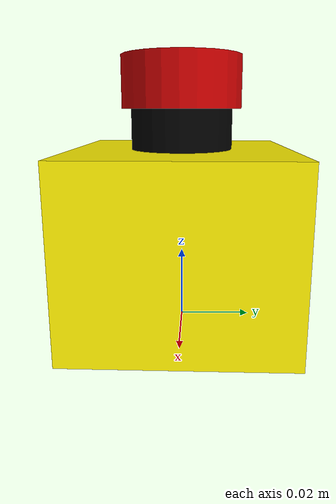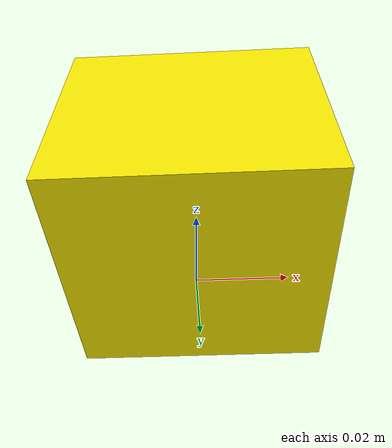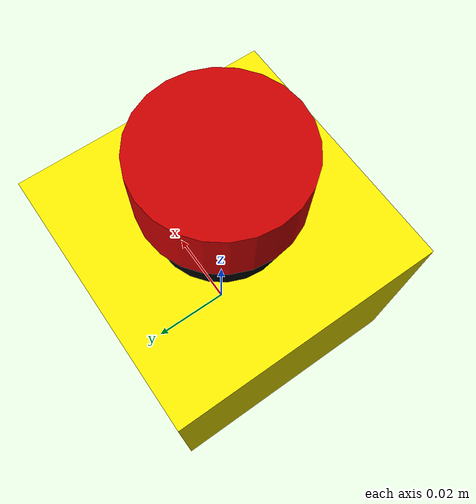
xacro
<?xml version="1.0"?>
<!-- Interactable Emergency Stop Button -->
<robot name="e_stop_button" xmlns:xacro="http://www.ros.org/wiki/xacro">

    <xacro:macro name="e_stop_button">

        <!-- Constants for Button Dimensions -->
        <!-- Base -->
        <xacro:property name="width" value="0.06"/>
        <xacro:property name="height1" value="0.05"/>
        <xacro:property name="mass1" value="0.5"/>

        <!-- Shaft -->
        <xacro:property name="length2" value="0.011"/>
        <xacro:property name="radius2" value="0.014"/>
        <xacro:property name="mass2" value="0.2"/>

        <!-- Top -->
        <xacro:property name="length3" value="0.014"/>
        <xacro:property name="radius3" value="0.0165"/>
        <xacro:property name="mass3" value="0.1"/>

        <!-- Import all Gazebo-customization elements, including Gazebo colors -->
        <xacro:include filename="$(find manipulation_playground_articulated_devices)/devices/e_stop_button/model/button.gazebo" />
        <!-- Import Rviz colors -->
        <xacro:include filename="$(find manipulation_playground_articulated_devices)/devices/e_stop_button/model/materials.xacro" />

        <!-- Used to fix device to world -->
        <link name="world"/>

        <joint name="button_base_to_world" type="fixed">
            <parent link="world"/>
            <child link="base"/>
            <origin xyz="0 0 0" rpy="0 0 0"/>
        </joint>

        <!-- Button Base -->
        <link name="base">
            <collision>
                <origin xyz="0 0 ${height1/2}" rpy="0 0 0"/>
                <geometry>
                    <box size="${width} ${width} ${height1}"/>
                </geometry>
            </collision>

            <visual>
                <origin xyz="0 0 ${height1/2}" rpy="0 0 0"/>
                <geometry>
                    <box size="${width} ${width} ${height1}"/>
                </geometry>
                <material name="yellow"/>
            </visual>

            <inertial>
                <origin xyz="0 0 ${height1/2}" rpy="0 0 0"/>
                <mass value="${mass1}"/>
                <inertia
                    ixx="${mass1 / 12.0 * (width*width + height1*height1)}" ixy="0.0" ixz="0.0"
                    iyy="${mass1 / 12.0 * (height1*height1 + width*width)}" iyz="0.0"
                    izz="${mass1 / 12.0 * (width*width + width*width)}"/>
            </inertial>
        </link>

        <!-- Button Twist Joint -->
        <joint name="button_twist_joint" type="revolute">
            <parent link="base"/>
            <child link="shaft"/>
            <origin xyz="0 0 ${height1}" rpy="0 0 0"/>
            <axis xyz="0 0 1"/>
            <dynamics damping="0.0" friction="0.0" />
            <limit effort="100" lower="-1.5707" upper="0" velocity="0.5" />
        </joint>

        <transmission name="button_twist_trans">
            <type>transmission_interface/SimpleTransmission</type>
            <joint name="button_twist_joint">
                <hardwareInterface>hardware_interface/EffortJointInterface</hardwareInterface>
            </joint>
            <actuator name="button_twist_actuator">
                <hardwareInterface>hardware_interface/EffortJointInterface</hardwareInterface>
                <mechanicalReduction>1</mechanicalReduction>
            </actuator>
        </transmission>

        <!-- Button Shaft -->
        <link name="shaft">
            <collision>
                <origin xyz="0 0 ${length2/2}" rpy="0 0 0"/>
                <geometry>
                    <cylinder radius="${radius2}" length="${length2}"/>
                </geometry>
            </collision>

            <visual>
                <origin xyz="0 0 ${length2/2}" rpy="0 0 0"/>
                <geometry>
                    <cylinder radius="${radius2}" length="${length2}"/>
                </geometry>
                <material name="black"/>
            </visual>

            <inertial>
                <origin xyz="0 0 ${length2/2}" rpy="0 0 0"/>
                <mass value="${mass2}"/>
                <inertia
                    ixx="${mass2 / 12.0 * (3.0*radius2*radius2 + length2*length2)}" ixy="0.0" ixz="0.0"
                    iyy="${mass2 / 12.0 * (3.0*radius2*radius2 + length2*length2)}" iyz="0.0"
                    izz="${mass2 / 2.0 * (radius2*radius2)}"/>
            </inertial>
        </link>

        <joint name="button_handle_to_shaft" type="fixed">
            <parent link="shaft"/>
            <child link="handle_zero"/>
            <origin xyz="0 0 ${length2}" rpy="0 0 0"/>
        </joint>

        <link name="handle_zero">
            <inertial>
                <origin xyz="0 0 0" rpy="0 0 0" />
                <mass value="0.01" />
                <inertia
                ixx="0.01" ixy="0.0" ixz="0.0"
                iyy="0.01" iyz="0.0"
                izz="0.01" />
            </inertial>
        </link>

        <!-- Button (Push) Joint -->
        <joint name="button_joint" type="prismatic">
            <parent link="handle_zero"/>
            <child link="handle"/>
            <origin xyz="0 0 0" rpy="0 0 0"/>
            <axis xyz="0 0 1"/>
            <dynamics damping="0.0" friction="0.0" />
            <limit effort="100" lower="-0.005" upper="0" velocity="0.5" />
        </joint>

        <transmission name="button_trans">
            <type>transmission_interface/SimpleTransmission</type>
            <joint name="button_joint">
                <hardwareInterface>hardware_interface/EffortJointInterface</hardwareInterface>
            </joint>
            <actuator name="button_actuator">
                <hardwareInterface>hardware_interface/EffortJointInterface</hardwareInterface>
                <mechanicalReduction>1</mechanicalReduction>
            </actuator>
        </transmission>

        <!-- Button Handle (Top) -->
        <link name="handle">
            <collision>
                <origin xyz="0 0 ${length3/2}" rpy="0 0 0"/>
                <geometry>
                    <cylinder radius="${radius3}" length="${length3}"/>
                </geometry>
            </collision>

            <visual>
                <origin xyz="0 0 ${length3/2}" rpy="0 0 0"/>
                <geometry>
                    <cylinder radius="${radius3}" length="${length3}"/>
                </geometry>
                <material name="red"/>
            </visual>

            <inertial>
                <origin xyz="0 0 ${length3/2}" rpy="0 0 0"/>
                <mass value="${mass3}"/>
                <inertia
                    ixx="${mass3 / 12.0 * (3.0*radius3*radius3 + length3*length3)}" ixy="0.0" ixz="0.0"
                    iyy="${mass3 / 12.0 * (3.0*radius3*radius3 + length3*length3)}" iyz="0.0"
                    izz="${mass3 / 2.0 * (radius3*radius3)}"/>
            </inertial>
        </link>
    </xacro:macro>

    <xacro:e_stop_button/>
</robot>

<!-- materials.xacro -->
<robot>

  <material name="black">
    <color rgba="0.0 0.0 0.0 1.0"/>
  </material>

  <material name="blue">
    <color rgba="0.0 0.0 0.8 1.0"/>
  </material>

  <material name="green">
    <color rgba="0.0 0.8 0.0 1.0"/>
  </material>

  <material name="grey">
    <color rgba="0.2 0.2 0.2 1.0"/>
  </material>

  <material name="orange">
    <color rgba="${255/255} ${108/255} ${10/255} 1.0"/>
  </material>

  <material name="brown">
    <color rgba="${222/255} ${207/255} ${195/255} 1.0"/>
  </material>

  <material name="red">
    <color rgba="0.8 0.0 0.0 1.0"/>
  </material>

  <material name="white">
    <color rgba="1.0 1.0 1.0 1.0"/>
  </material>

  <material name="yellow">
    <color rgba="${255/255} ${240/255} 0.0 1.0"/>
  </material>

</robot>
